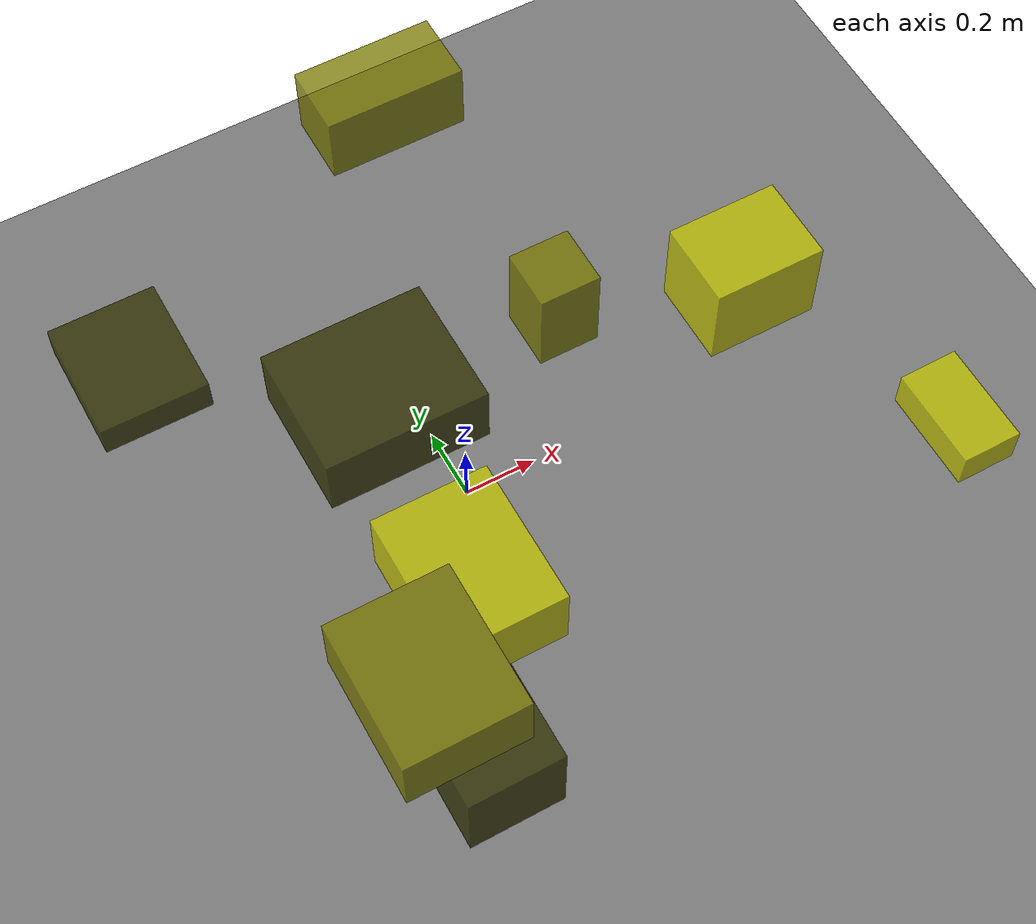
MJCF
<?xml version="1.0"?>
<mujoco model="obstacle_scene">
  <compiler angle="radian" coordinate="local"/>
  <option timestep="0.001" gravity="0 0 -9.81"/>

  <asset>
    <material name="obstacle_mat" rgba="0.8 0.8 0.0 0.8"/>
    <material name="ground_mat" rgba="0.5 0.5 0.5 1"/>
  </asset>

  <worldbody>
    <!-- Ground plane -->
    <geom name="ground" type="plane" size="3 3 0.1" material="ground_mat"/>

    <!-- Obstacles -->
    <body name="obstacle_0" pos="-0.271635 -0.112047 0.843624">
      <geom name="obs_0" type="box" size="0.197981 0.164543 0.085062" rgba="0.2 0.2 0.0 0.8"/>
    </body>
    <body name="obstacle_1" pos="0.335827 0.142718 0.486227">
      <geom name="obs_1" type="box" size="0.082504 0.082168 0.130964" rgba="0.5 0.5 0.0 0.8"/>
    </body>
    <body name="obstacle_2" pos="0.936326 -0.702281 0.642651">
      <geom name="obs_2" type="box" size="0.075476 0.129867 0.049046" rgba="0.8 0.8 0.0 0.8"/>
    </body>
    <body name="obstacle_3" pos="-0.328123 -0.722720 0.136436">
      <geom name="obs_3" type="box" size="0.130478 0.145269 0.130908" rgba="0.2 0.2 0.0 0.8"/>
    </body>
    <body name="obstacle_4" pos="-0.507072 -0.814845 0.911908">
      <geom name="obs_4" type="box" size="0.145937 0.178154 0.084792" rgba="0.5 0.5 0.0 0.8"/>
    </body>
    <body name="obstacle_5" pos="0.678042 -0.156215 0.733746">
      <geom name="obs_5" type="box" size="0.142234 0.110266 0.120844" rgba="0.8 0.8 0.0 0.8"/>
    </body>
    <body name="obstacle_6" pos="-0.685971 0.429572 0.539425">
      <geom name="obs_6" type="box" size="0.140364 0.164201 0.044902" rgba="0.2 0.2 0.0 0.8"/>
    </body>
    <body name="obstacle_7" pos="0.128066 0.647414 0.850999">
      <geom name="obs_7" type="box" size="0.179278 0.092207 0.092997" rgba="0.5 0.5 0.0 0.8"/>
    </body>
    <body name="obstacle_8" pos="-0.316289 -0.637431 0.889378">
      <geom name="obs_8" type="box" size="0.138508 0.177334 0.089557" rgba="0.8 0.8 0.0 0.8"/>
    </body>
  </worldbody>
</mujoco>
